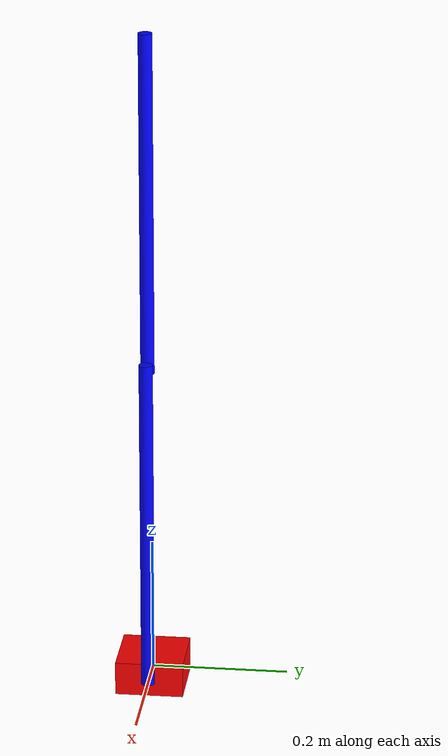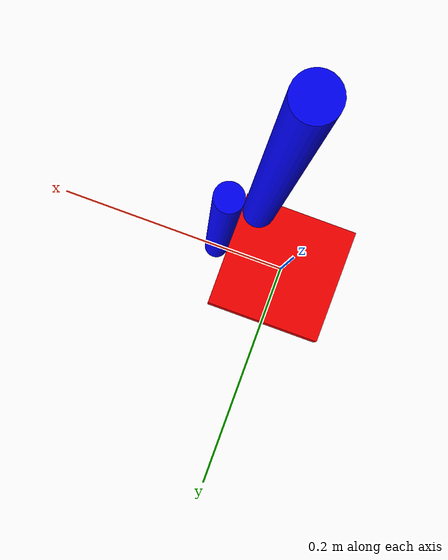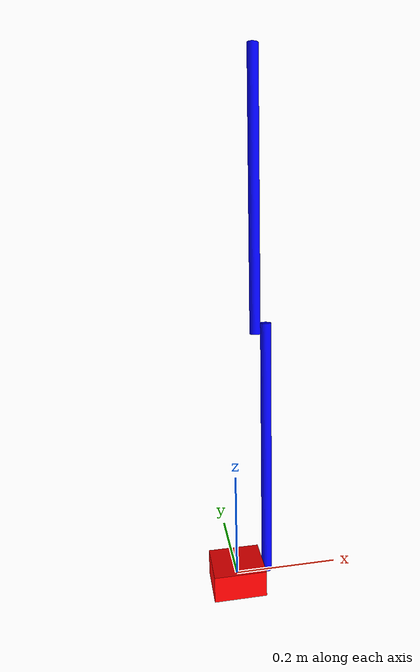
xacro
<?xml version="1.0"?>
<robot xmlns:xacro="http://www.ros.org/wiki/xacro" name="pendulum_robot">
<xacro:property name="radius" value="0.01"/>
<xacro:property name="len" value="0.5"/>
<xacro:property name="mass" value="${radius*radius*3.14*len*7800}"/>
<xacro:property name="len2" value="0.48"/>
<xacro:property name="mass2" value="${radius*radius*3.14*len2*7800}"/>
  <link name="base_link"/>
  <link name="base">
    <visual>
      <geometry>
      <box size=".1 .1 .05"/>
      </geometry>
      <material name="red"/>
    </visual>
  </link>
  <joint name="root2base" type="prismatic">
    <parent link="base_link"/>
    <child link="base"/>
    <limit effort="1000" lower="-1" upper="1" velocity="0.5"/>
    <origin xyz="0 0 0" rpy="0 0 0"/>
  </joint>
  <link name="pendulum1">
    <visual>
      <geometry>
	<cylinder length="${len}" radius="${radius}"/>
      </geometry>
      <material name="blue"/>
    </visual>
    <collision>
      <geometry>
	<cylinder length="${len}" radius="${radius}"/>
      </geometry>
    </collision>
    <inertial>
      <mass value="${mass}"/>
      <inertia ixx="${(1/3)*mass*len*len}" izz="${(1/3)*mass*len*len}" ixy="0" ixz="0" iyy="0" iyz="0"/>
    </inertial>
  </link>
  <link name="pendulum2">
    <visual>
      <geometry>
	<cylinder length="${len}" radius="${radius}"/>
      </geometry>
      <material name="blue"/>
    </visual>
    <collision>
      <geometry>
	<cylinder length="${len2}" radius="${radius}"/>
      </geometry>
    </collision>
    <inertial>
      <mass value="${mass2}"/>
      <inertia ixx="${(1/3)*mass*len2*len2}" izz="${(1/3)*mass*len2*len2}" ixy="0" ixz="0" iyy="0" iyz="0"/>
    </inertial>
  </link>

  <joint name="p2base" type="fixed">
    <parent link="base"/>
    <child link="pendulum1"/>
    <origin xyz=".06 0 .25" rpy="0 0 0"/>
  </joint>
  <joint name="p2p" type="fixed">
    <parent link="pendulum1"/>
    <child link="pendulum2"/>
    <origin xyz="-.02 0 .48" rpy="0 0 0"/>
  </joint>

   <link name="world"/>

  <joint name="fixed" type="fixed">
    <parent link="world"/>
    <child link="base_link"/>
  </joint>

  <material name="red">
    <color rgba="1 0 0 1"/>
  </material>
  <material name="blue">
    <color rgba="0 0 1 1"/>
  </material>

  <gazebo reference="base">
    <material>Gazebo/Red</material>
  </gazebo>

  <gazebo reference="base">
    <material>Gazebo/Blue</material>
  </gazebo>

  <gazebo reference="base">
    <material>Gazebo/Blue</material>
  </gazebo>
</robot>
